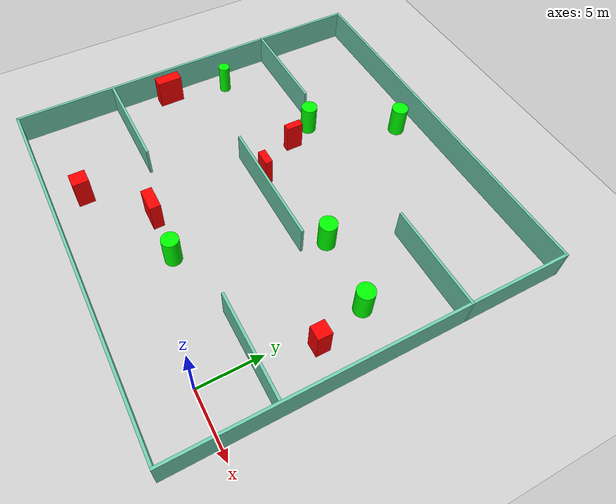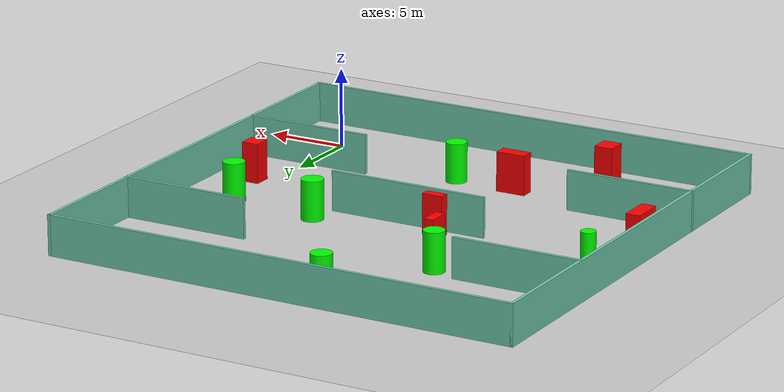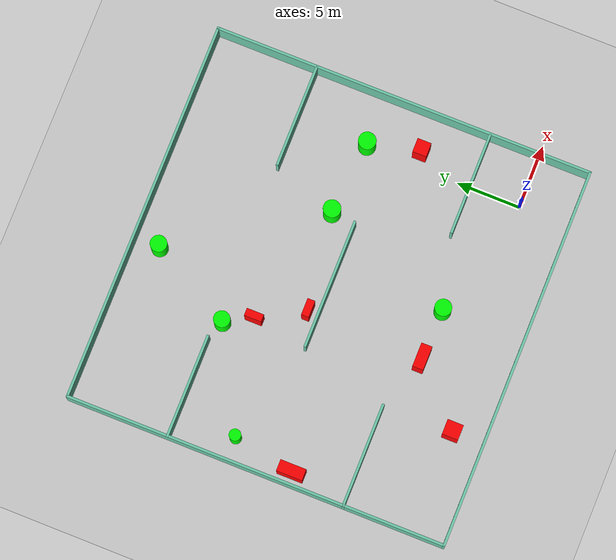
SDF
<sdf version="1.7">
 <world name="default">
  <light name="sun" type="directional">
   <pose>0 0 10 0 -0 0</pose>
   <diffuse>0.8 0.8 0.8 1</diffuse>
   <specular>0.2 0.2 0.2 1</specular>
   <attenuation>
    <range>1000</range>
    <constant>0.9</constant>
    <linear>0.01</linear>
    <quadratic>0.001</quadratic>
   </attenuation>
   <direction>-0.5 0.1 -0.9</direction>
   <spot><inner_angle>0</inner_angle><outer_angle>0</outer_angle><falloff>0</falloff></spot>
  </light>
  <model name="ground_plane">
   <static>1</static>
   <link name="link">
    <collision name="collision">
     <geometry><plane><normal>0 0 1</normal><size>100 100</size></plane></geometry>
     <surface>
      <contact><collide_bitmask>65535</collide_bitmask></contact>
      <friction><ode><mu>100</mu><mu2>50</mu2></ode></friction>
     </surface>
    </collision>
    <visual name="visual">
     <cast_shadows>0</cast_shadows>
     <geometry><plane><normal>0 0 1</normal><size>100 100</size></plane></geometry>
     <material>
      <script><uri>file://media/materials/scripts/gazebo.material</uri><name>Gazebo/Grey</name></script>
     </material>
    </visual>
   </link>
  </model>
  <gravity>0 0 -9.8</gravity>
  <magnetic_field>6e-06 2.3e-05 -4.2e-05</magnetic_field>
  <atmosphere type="adiabatic"/>
  <physics type="ode">
   <max_step_size>0.001</max_step_size>
   <real_time_factor>1</real_time_factor>
   <real_time_update_rate>1000</real_time_update_rate>
  </physics>
  <scene><ambient>0.4 0.4 0.4 1</ambient><background>0.7 0.7 0.7 1</background><shadows>1</shadows></scene>
  <spherical_coordinates>
   <surface_model>EARTH_WGS84</surface_model>
   <latitude_deg>0</latitude_deg>
   <longitude_deg>0</longitude_deg>
   <elevation>0</elevation>
   <heading_deg>0</heading_deg>
  </spherical_coordinates>
  <model name="my_base_walls">
   <link name="Wall_10">
    <collision name="Wall_10_Collision">
     <geometry><box><size>8.2 0.2 2.5</size></box></geometry>
     <pose>0 0 1.25 0 -0 0</pose>
    </collision>
    <visual name="Wall_10_Visual">
     <pose>0 0 1.25 0 -0 0</pose>
     <geometry><box><size>8.2 0.2 2.5</size></box></geometry>
     <material>
      <script><uri>file://media/materials/scripts/gazebo.material</uri><name>Gazebo/Grey</name></script>
      <ambient>0.435294 0.796078 0.67451 1</ambient>
     </material>
     <meta><layer>0</layer></meta>
    </visual>
    <pose>-11 -7 0 0 -0 0</pose>
   </link>
   <link name="Wall_12">
    <collision name="Wall_12_Collision">
     <geometry><box><size>8.2 0.2 2.5</size></box></geometry>
     <pose>0 0 1.25 0 -0 0</pose>
    </collision>
    <visual name="Wall_12_Visual">
     <pose>0 0 1.25 0 -0 0</pose>
     <geometry><box><size>8.2 0.2 2.5</size></box></geometry>
     <material>
      <script><uri>file://media/materials/scripts/gazebo.material</uri><name>Gazebo/Grey</name></script>
      <ambient>0.435294 0.796078 0.67451 1</ambient>
     </material>
     <meta><layer>0</layer></meta>
    </visual>
    <pose>-11 7 0 0 -0 0</pose>
   </link>
   <link name="Wall_14">
    <collision name="Wall_14_Collision">
     <geometry><box><size>8.2 0.2 2.5</size></box></geometry>
     <pose>0 0 1.25 0 -0 0</pose>
    </collision>
    <visual name="Wall_14_Visual">
     <pose>0 0 1.25 0 -0 0</pose>
     <geometry><box><size>8.2 0.2 2.5</size></box></geometry>
     <material>
      <script><uri>file://media/materials/scripts/gazebo.material</uri><name>Gazebo/Grey</name></script>
      <ambient>0.435294 0.796078 0.67451 1</ambient>
     </material>
     <meta><layer>0</layer></meta>
    </visual>
    <pose>11 7 0 0 -0 3.14159</pose>
   </link>
   <link name="Wall_16">
    <collision name="Wall_16_Collision">
     <geometry><box><size>10.2 0.2 2.5</size></box></geometry>
     <pose>0 0 1.25 0 -0 0</pose>
    </collision>
    <visual name="Wall_16_Visual">
     <pose>0 0 1.25 0 -0 0</pose>
     <geometry><box><size>10.2 0.2 2.5</size></box></geometry>
     <material>
      <script><uri>file://media/materials/scripts/gazebo.material</uri><name>Gazebo/Grey</name></script>
      <ambient>0.435294 0.796078 0.67451 1</ambient>
     </material>
     <meta><layer>0</layer></meta>
    </visual>
    <pose>0 0 0 0 -0 3.14159</pose>
   </link>
   <link name="Wall_2">
    <collision name="Wall_2_Collision">
     <geometry><box><size>30.2 0.2 2.5</size></box></geometry>
     <pose>0 0 1.25 0 -0 0</pose>
    </collision>
    <visual name="Wall_2_Visual">
     <pose>0 0 1.25 0 -0 0</pose>
     <geometry><box><size>30.2 0.2 2.5</size></box></geometry>
     <material>
      <script><uri>file://media/materials/scripts/gazebo.material</uri><name>Gazebo/Grey</name></script>
      <ambient>0.435294 0.796078 0.67451 1</ambient>
     </material>
     <meta><layer>0</layer></meta>
    </visual>
    <pose>0 -15 0 0 -0 3.14159</pose>
   </link>
   <link name="Wall_3">
    <collision name="Wall_3_Collision">
     <geometry><box><size>30.2 0.2 2.5</size></box></geometry>
     <pose>0 0 1.25 0 -0 0</pose>
    </collision>
    <visual name="Wall_3_Visual">
     <pose>0 0 1.25 0 -0 0</pose>
     <geometry><box><size>30.2 0.2 2.5</size></box></geometry>
     <material>
      <script><uri>file://media/materials/scripts/gazebo.material</uri><name>Gazebo/Grey</name></script>
      <ambient>0.435294 0.796078 0.67451 1</ambient>
     </material>
     <meta><layer>0</layer></meta>
    </visual>
    <pose>-15 0 0 0 -0 1.5708</pose>
   </link>
   <link name="Wall_4">
    <collision name="Wall_4_Collision">
     <geometry><box><size>30.2 0.2 2.5</size></box></geometry>
     <pose>0 0 1.25 0 -0 0</pose>
    </collision>
    <visual name="Wall_4_Visual">
     <pose>0 0 1.25 0 -0 0</pose>
     <geometry><box><size>30.2 0.2 2.5</size></box></geometry>
     <material>
      <script><uri>file://media/materials/scripts/gazebo.material</uri><name>Gazebo/Grey</name></script>
      <ambient>0.435294 0.796078 0.67451 1</ambient>
     </material>
     <meta><layer>0</layer></meta>
    </visual>
    <pose>0 15 0 0 -0 0</pose>
   </link>
   <link name="Wall_6">
    <collision name="Wall_6_Collision">
     <geometry><box><size>30.2 0.2 2.5</size></box></geometry>
     <pose>0 0 1.25 0 -0 0</pose>
    </collision>
    <visual name="Wall_6_Visual">
     <pose>0 0 1.25 0 -0 0</pose>
     <geometry><box><size>30.2 0.2 2.5</size></box></geometry>
     <material>
      <script><uri>file://media/materials/scripts/gazebo.material</uri><name>Gazebo/Grey</name></script>
      <ambient>0.435294 0.796078 0.67451 1</ambient>
     </material>
     <meta><layer>0</layer></meta>
    </visual>
    <pose>15 0 0 0 -0 1.5708</pose>
   </link>
   <link name="Wall_8">
    <collision name="Wall_8_Collision">
     <geometry><box><size>8.2 0.2 2.5</size></box></geometry>
     <pose>0 0 1.25 0 -0 0</pose>
    </collision>
    <visual name="Wall_8_Visual">
     <pose>0 0 1.25 0 -0 0</pose>
     <geometry><box><size>8.2 0.2 2.5</size></box></geometry>
     <material>
      <script><uri>file://media/materials/scripts/gazebo.material</uri><name>Gazebo/Grey</name></script>
      <ambient>0.435294 0.796078 0.67451 1</ambient>
     </material>
     <meta><layer>0</layer></meta>
    </visual>
    <pose>11 -7 0 0 -0 3.14159</pose>
   </link>
   <static>1</static>
   <pose>-11 11 0 0 -0 0</pose>
  </model>
  <model name="cylinder1">
   <static>1</static>
   <link name="link">
    <inertial>
     <mass>1</mass>
     <inertia><ixx>0.5</ixx><ixy>0</ixy><ixz>0</ixz><iyy>0.5</iyy><iyz>0</iyz><izz>1</izz></inertia>
    </inertial>
    <collision name="collision">
     <geometry><cylinder><radius>0.6897885603214533</radius><length>2.5</length></cylinder></geometry>
    </collision>
    <visual name="visual">
     <geometry><cylinder><radius>0.6897885603214533</radius><length>2.5</length></cylinder></geometry>
     <material>
      <ambient>0 1 0 1</ambient>
      <diffuse>0 1 0 1</diffuse>
      <specular>0.1 0.1 0.1 1</specular>
      <emissive>0 0 0 0</emissive>
     </material>
    </visual>
   </link>
   <pose>-5.661255401942832 12.952045776168376 1.25 0 0 0</pose>
  </model>
  <model name="cylinder2">
   <static>1</static>
   <link name="link">
    <inertial>
     <mass>1</mass>
     <inertia><ixx>0.5</ixx><ixy>0</ixy><ixz>0</ixz><iyy>0.5</iyy><iyz>0</iyz><izz>1</izz></inertia>
    </inertial>
    <collision name="collision">
     <geometry><cylinder><radius>0.6434231796988982</radius><length>2.5</length></cylinder></geometry>
    </collision>
    <visual name="visual">
     <geometry><cylinder><radius>0.6434231796988982</radius><length>2.5</length></cylinder></geometry>
     <material>
      <ambient>0 1 0 1</ambient>
      <diffuse>0 1 0 1</diffuse>
      <specular>0.1 0.1 0.1 1</specular>
      <emissive>0 0 0 0</emissive>
     </material>
    </visual>
   </link>
   <pose>-16.424289717044992 17.505132729764746 1.25 0 0 0</pose>
  </model>
  <model name="cylinder3">
   <static>1</static>
   <link name="link">
    <inertial>
     <mass>1</mass>
     <inertia><ixx>0.5</ixx><ixy>0</ixy><ixz>0</ixz><iyy>0.5</iyy><iyz>0</iyz><izz>1</izz></inertia>
    </inertial>
    <collision name="collision">
     <geometry><cylinder><radius>0.6527250956527276</radius><length>2.5</length></cylinder></geometry>
    </collision>
    <visual name="visual">
     <geometry><cylinder><radius>0.6527250956527276</radius><length>2.5</length></cylinder></geometry>
     <material>
      <ambient>0 1 0 1</ambient>
      <diffuse>0 1 0 1</diffuse>
      <specular>0.1 0.1 0.1 1</specular>
      <emissive>0 0 0 0</emissive>
     </material>
    </visual>
   </link>
   <pose>-12.888905276371654 24.015348211349085 1.25 0 0 0</pose>
  </model>
  <model name="cylinder4">
   <static>1</static>
   <link name="link">
    <inertial>
     <mass>1</mass>
     <inertia><ixx>0.5</ixx><ixy>0</ixy><ixz>0</ixz><iyy>0.5</iyy><iyz>0</iyz><izz>1</izz></inertia>
    </inertial>
    <collision name="collision">
     <geometry><cylinder><radius>0.6851806559666729</radius><length>2.5</length></cylinder></geometry>
    </collision>
    <visual name="visual">
     <geometry><cylinder><radius>0.6851806559666729</radius><length>2.5</length></cylinder></geometry>
     <material>
      <ambient>0 1 0 1</ambient>
      <diffuse>0 1 0 1</diffuse>
      <specular>0.1 0.1 0.1 1</specular>
      <emissive>0 0 0 0</emissive>
     </material>
    </visual>
   </link>
   <pose>0.11039789998025995 12.394195497241764 1.25 0 0 0</pose>
  </model>
  <model name="cylinder5">
   <static>1</static>
   <link name="link">
    <inertial>
     <mass>1</mass>
     <inertia><ixx>0.5</ixx><ixy>0</ixy><ixz>0</ixz><iyy>0.5</iyy><iyz>0</iyz><izz>1</izz></inertia>
    </inertial>
    <collision name="collision">
     <geometry><cylinder><radius>0.6596160812770151</radius><length>2.5</length></cylinder></geometry>
    </collision>
    <visual name="visual">
     <geometry><cylinder><radius>0.6596160812770151</radius><length>2.5</length></cylinder></geometry>
     <material>
      <ambient>0 1 0 1</ambient>
      <diffuse>0 1 0 1</diffuse>
      <specular>0.1 0.1 0.1 1</specular>
      <emissive>0 0 0 0</emissive>
     </material>
    </visual>
   </link>
   <pose>-9.55102616718695 2.49956818632616 1.25 0 0 0</pose>
  </model>
  <model name="cylinder6">
   <static>1</static>
   <link name="link">
    <inertial>
     <mass>1</mass>
     <inertia><ixx>0.5</ixx><ixy>0</ixy><ixz>0</ixz><iyy>0.5</iyy><iyz>0</iyz><izz>1</izz></inertia>
    </inertial>
    <collision name="collision">
     <geometry><cylinder><radius>0.4597970761631469</radius><length>2.5</length></cylinder></geometry>
    </collision>
    <visual name="visual">
     <geometry><cylinder><radius>0.4597970761631469</radius><length>2.5</length></cylinder></geometry>
     <material>
      <ambient>0 1 0 1</ambient>
      <diffuse>0 1 0 1</diffuse>
      <specular>0.1 0.1 0.1 1</specular>
      <emissive>0 0 0 0</emissive>
     </material>
    </visual>
   </link>
   <pose>-24.09249126696495 13.372895868563798 1.25 0 0 0</pose>
  </model>
  <model name="box1">
   <static>1</static>
   <link name="link">
    <inertial>
     <mass>1</mass>
     <inertia><ixx>0.083</ixx><ixy>0</ixy><ixz>0</ixz><iyy>0.083</iyy><iyz>0</iyz><izz>0.083</izz></inertia>
    </inertial>
    <collision name="collision">
     <geometry><box><size>0.8981807576214633 2.0457114703095645 2.5</size></box></geometry>
    </collision>
    <visual name="visual">
     <geometry><box><size>0.8981807576214633 2.0457114703095645 2.5</size></box></geometry>
     <material>
      <ambient>1 0 0 1</ambient>
      <diffuse>1 0 0 1</diffuse>
      <specular>0.1 0.1 0.1 1</specular>
      <emissive>0 0 0 0</emissive>
     </material>
    </visual>
    <sensor name="my_contact" type="contact">
     <contact><collision>box_collision</collision><topic>__default_topic__</topic></contact>
    </sensor>
   </link>
   <pose>-24.979983688956196 8.53228279049288 1.25 0 0 0</pose>
  </model>
  <model name="box2">
   <static>1</static>
   <link name="link">
    <inertial>
     <mass>1</mass>
     <inertia><ixx>0.083</ixx><ixy>0</ixy><ixz>0</ixz><iyy>0.083</iyy><iyz>0</iyz><izz>0.083</izz></inertia>
    </inertial>
    <collision name="collision">
     <geometry><box><size>0.5800014670476171 1.35533863482674 2.5</size></box></geometry>
    </collision>
    <visual name="visual">
     <geometry><box><size>0.5800014670476171 1.35533863482674 2.5</size></box></geometry>
     <material>
      <ambient>1 0 0 1</ambient>
      <diffuse>1 0 0 1</diffuse>
      <specular>0.1 0.1 0.1 1</specular>
      <emissive>0 0 0 0</emissive>
     </material>
    </visual>
    <sensor name="my_contact" type="contact">
     <contact><collision>box_collision</collision><topic>__default_topic__</topic></contact>
    </sensor>
   </link>
   <pose>-15.255155237712179 15.39147865020066 1.25 0 0 0</pose>
  </model>
  <model name="box3">
   <static>1</static>
   <link name="link">
    <inertial>
     <mass>1</mass>
     <inertia><ixx>0.083</ixx><ixy>0</ixy><ixz>0</ixz><iyy>0.083</iyy><iyz>0</iyz><izz>0.083</izz></inertia>
    </inertial>
    <collision name="collision">
     <geometry><box><size>1.1792427097734715 1.2680650278297114 2.5</size></box></geometry>
    </collision>
    <visual name="visual">
     <geometry><box><size>1.1792427097734715 1.2680650278297114 2.5</size></box></geometry>
     <material>
      <ambient>1 0 0 1</ambient>
      <diffuse>1 0 0 1</diffuse>
      <specular>0.1 0.1 0.1 1</specular>
      <emissive>0 0 0 0</emissive>
     </material>
    </visual>
    <sensor name="my_contact" type="contact">
     <contact><collision>box_collision</collision><topic>__default_topic__</topic></contact>
    </sensor>
   </link>
   <pose>-17.78275728646762 -1.4824632011263388 1.25 0 0 0</pose>
  </model>
  <model name="box4">
   <static>1</static>
   <link name="link">
    <inertial>
     <mass>1</mass>
     <inertia><ixx>0.083</ixx><ixy>0</ixy><ixz>0</ixz><iyy>0.083</iyy><iyz>0</iyz><izz>0.083</izz></inertia>
    </inertial>
    <collision name="collision">
     <geometry><box><size>1.8761748313980582 0.8592284328965822 2.5</size></box></geometry>
    </collision>
    <visual name="visual">
     <geometry><box><size>1.8761748313980582 0.8592284328965822 2.5</size></box></geometry>
     <material>
      <ambient>1 0 0 1</ambient>
      <diffuse>1 0 0 1</diffuse>
      <specular>0.1 0.1 0.1 1</specular>
      <emissive>0 0 0 0</emissive>
     </material>
    </visual>
    <sensor name="my_contact" type="contact">
     <contact><collision>box_collision</collision><topic>__default_topic__</topic></contact>
    </sensor>
   </link>
   <pose>-13.533643429860533 2.611882772930315 1.25 0 0 0</pose>
  </model>
  <model name="box5">
   <static>1</static>
   <link name="link">
    <inertial>
     <mass>1</mass>
     <inertia><ixx>0.083</ixx><ixy>0</ixy><ixz>0</ixz><iyy>0.083</iyy><iyz>0</iyz><izz>0.083</izz></inertia>
    </inertial>
    <collision name="collision">
     <geometry><box><size>1.0873112136937029 1.096409257556733 2.5</size></box></geometry>
    </collision>
    <visual name="visual">
     <geometry><box><size>1.0873112136937029 1.096409257556733 2.5</size></box></geometry>
     <material>
      <ambient>1 0 0 1</ambient>
      <diffuse>1 0 0 1</diffuse>
      <specular>0.1 0.1 0.1 1</specular>
      <emissive>0 0 0 0</emissive>
     </material>
    </visual>
    <sensor name="my_contact" type="contact">
     <contact><collision>box_collision</collision><topic>__default_topic__</topic></contact>
    </sensor>
   </link>
   <pose>1.140760404812383 8.397259186375841 1.25 0 0 0</pose>
  </model>
  <model name="box6">
   <static>1</static>
   <link name="link">
    <inertial>
     <mass>1</mass>
     <inertia><ixx>0.083</ixx><ixy>0</ixy><ixz>0</ixz><iyy>0.083</iyy><iyz>0</iyz><izz>0.083</izz></inertia>
    </inertial>
    <collision name="collision">
     <geometry><box><size>1.3145820480186732 0.5989620202388868 2.5</size></box></geometry>
    </collision>
    <visual name="visual">
     <geometry><box><size>1.3145820480186732 0.5989620202388868 2.5</size></box></geometry>
     <material>
      <ambient>1 0 0 1</ambient>
      <diffuse>1 0 0 1</diffuse>
      <specular>0.1 0.1 0.1 1</specular>
      <emissive>0 0 0 0</emissive>
     </material>
    </visual>
    <sensor name="my_contact" type="contact">
     <contact><collision>box_collision</collision><topic>__default_topic__</topic></contact>
    </sensor>
   </link>
   <pose>-13.27163983183568 11.842679377002362 1.25 0 0 0</pose>
  </model>
 </world>
</sdf>
